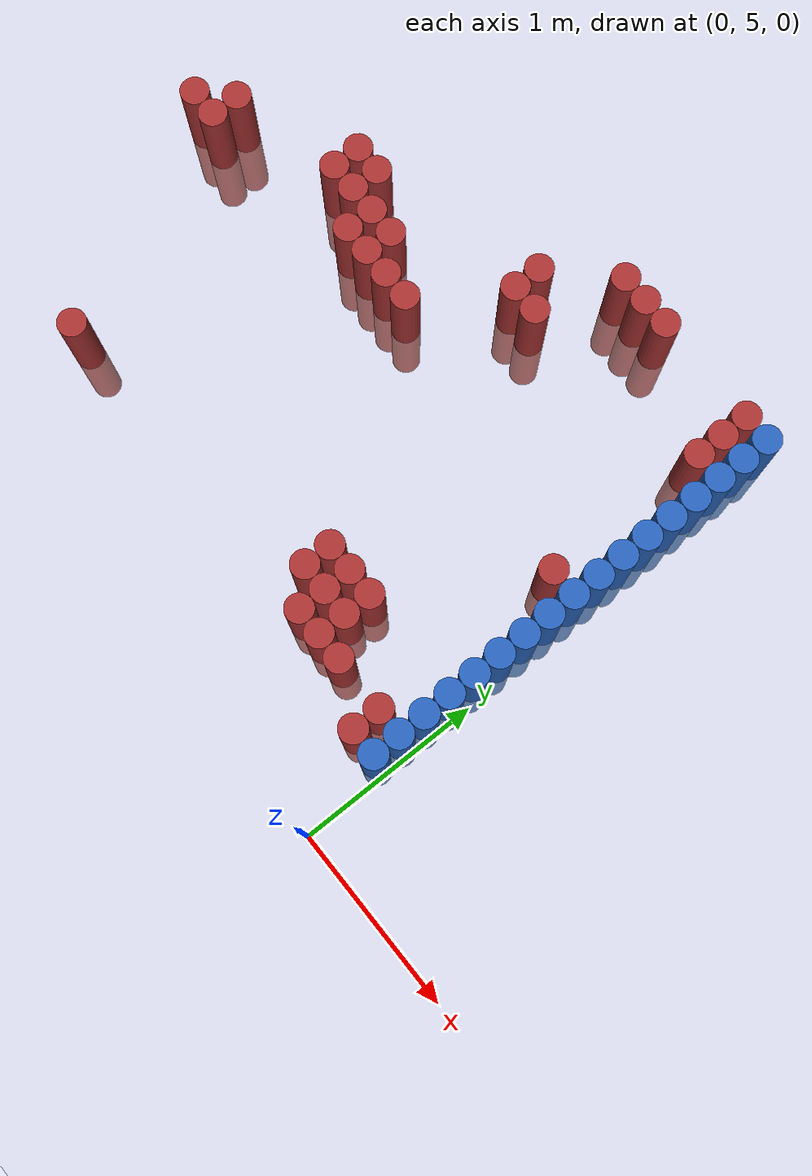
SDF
<sdf version="1.6">
 <world name="default">
  <model name="ground_plane">
   <static>1</static>
   <link name="link">
    <collision name="collision">
     <geometry><plane><normal>0 0 1</normal><size>100 100</size></plane></geometry>
     <surface><friction><ode><mu>100</mu><mu2>50</mu2></ode></friction></surface>
    </collision>
    <visual name="visual">
     <cast_shadows>0</cast_shadows>
     <geometry><plane><normal>0 0 1</normal><size>100 100</size></plane></geometry>
     <material>
      <script><uri>file://media/materials/scripts/gazebo.material</uri><name>Gazebo/Grey</name></script>
     </material>
    </visual>
   </link>
  </model>
  <model name="unit_cylinder_154">
   <static>1</static>
   <pose>-3.225000 6.825000 0.000000 0.000000 0.000000 0.000000</pose>
   <link name="link">
    <inertial>
     <mass>1</mass>
     <inertia><ixx>0.145833</ixx><ixy>0</ixy><ixz>0</ixz><iyy>0.145833</iyy><iyz>0</iyz><izz>0.125</izz></inertia>
    </inertial>
    <collision name="collision">
     <geometry><cylinder><radius>0.075000</radius><length>1</length></cylinder></geometry>
    </collision>
    <visual name="visual">
     <geometry><cylinder><radius>0.075000</radius><length>1</length></cylinder></geometry>
     <material>
      <ambient>0.648000 0.192000 0.192000 1</ambient>
      <diffuse>0.648000 0.192000 0.192000 1</diffuse>
     </material>
     <material>
      <script><name>Gazebo/Grey</name><uri>file://media/materials/scripts/gazebo.material</uri></script>
     </material>
    </visual>
   </link>
  </model>
  <model name="unit_cylinder_155">
   <static>1</static>
   <pose>-3.075000 6.825000 0.000000 0.000000 0.000000 0.000000</pose>
   <link name="link">
    <inertial>
     <mass>1</mass>
     <inertia><ixx>0.145833</ixx><ixy>0</ixy><ixz>0</ixz><iyy>0.145833</iyy><iyz>0</iyz><izz>0.125</izz></inertia>
    </inertial>
    <collision name="collision">
     <geometry><cylinder><radius>0.075000</radius><length>1</length></cylinder></geometry>
    </collision>
    <visual name="visual">
     <geometry><cylinder><radius>0.075000</radius><length>1</length></cylinder></geometry>
     <material>
      <ambient>0.648000 0.192000 0.192000 1</ambient>
      <diffuse>0.648000 0.192000 0.192000 1</diffuse>
     </material>
     <material>
      <script><name>Gazebo/Grey</name><uri>file://media/materials/scripts/gazebo.material</uri></script>
     </material>
    </visual>
   </link>
  </model>
  <model name="unit_cylinder_156">
   <static>1</static>
   <pose>-3.075000 6.975000 0.000000 0.000000 0.000000 0.000000</pose>
   <link name="link">
    <inertial>
     <mass>1</mass>
     <inertia><ixx>0.145833</ixx><ixy>0</ixy><ixz>0</ixz><iyy>0.145833</iyy><iyz>0</iyz><izz>0.125</izz></inertia>
    </inertial>
    <collision name="collision">
     <geometry><cylinder><radius>0.075000</radius><length>1</length></cylinder></geometry>
    </collision>
    <visual name="visual">
     <geometry><cylinder><radius>0.075000</radius><length>1</length></cylinder></geometry>
     <material>
      <ambient>0.648000 0.192000 0.192000 1</ambient>
      <diffuse>0.648000 0.192000 0.192000 1</diffuse>
     </material>
     <material>
      <script><name>Gazebo/Grey</name><uri>file://media/materials/scripts/gazebo.material</uri></script>
     </material>
    </visual>
   </link>
  </model>
  <model name="unit_cylinder_158">
   <static>1</static>
   <pose>-2.625000 5.625000 0.000000 0.000000 0.000000 0.000000</pose>
   <link name="link">
    <inertial>
     <mass>1</mass>
     <inertia><ixx>0.145833</ixx><ixy>0</ixy><ixz>0</ixz><iyy>0.145833</iyy><iyz>0</iyz><izz>0.125</izz></inertia>
    </inertial>
    <collision name="collision">
     <geometry><cylinder><radius>0.075000</radius><length>1</length></cylinder></geometry>
    </collision>
    <visual name="visual">
     <geometry><cylinder><radius>0.075000</radius><length>1</length></cylinder></geometry>
     <material>
      <ambient>0.648000 0.192000 0.192000 1</ambient>
      <diffuse>0.648000 0.192000 0.192000 1</diffuse>
     </material>
     <material>
      <script><name>Gazebo/Grey</name><uri>file://media/materials/scripts/gazebo.material</uri></script>
     </material>
    </visual>
   </link>
  </model>
  <model name="unit_cylinder_163">
   <static>1</static>
   <pose>-2.475000 7.125000 0.000000 0.000000 0.000000 0.000000</pose>
   <link name="link">
    <inertial>
     <mass>1</mass>
     <inertia><ixx>0.145833</ixx><ixy>0</ixy><ixz>0</ixz><iyy>0.145833</iyy><iyz>0</iyz><izz>0.125</izz></inertia>
    </inertial>
    <collision name="collision">
     <geometry><cylinder><radius>0.075000</radius><length>1</length></cylinder></geometry>
    </collision>
    <visual name="visual">
     <geometry><cylinder><radius>0.075000</radius><length>1</length></cylinder></geometry>
     <material>
      <ambient>0.648000 0.192000 0.192000 1</ambient>
      <diffuse>0.648000 0.192000 0.192000 1</diffuse>
     </material>
     <material>
      <script><name>Gazebo/Grey</name><uri>file://media/materials/scripts/gazebo.material</uri></script>
     </material>
    </visual>
   </link>
  </model>
  <model name="unit_cylinder_164">
   <static>1</static>
   <pose>-2.475000 7.275000 0.000000 0.000000 0.000000 0.000000</pose>
   <link name="link">
    <inertial>
     <mass>1</mass>
     <inertia><ixx>0.145833</ixx><ixy>0</ixy><ixz>0</ixz><iyy>0.145833</iyy><iyz>0</iyz><izz>0.125</izz></inertia>
    </inertial>
    <collision name="collision">
     <geometry><cylinder><radius>0.075000</radius><length>1</length></cylinder></geometry>
    </collision>
    <visual name="visual">
     <geometry><cylinder><radius>0.075000</radius><length>1</length></cylinder></geometry>
     <material>
      <ambient>0.648000 0.192000 0.192000 1</ambient>
      <diffuse>0.648000 0.192000 0.192000 1</diffuse>
     </material>
     <material>
      <script><name>Gazebo/Grey</name><uri>file://media/materials/scripts/gazebo.material</uri></script>
     </material>
    </visual>
   </link>
  </model>
  <model name="unit_cylinder_169">
   <static>1</static>
   <pose>-2.325000 7.125000 0.000000 0.000000 0.000000 0.000000</pose>
   <link name="link">
    <inertial>
     <mass>1</mass>
     <inertia><ixx>0.145833</ixx><ixy>0</ixy><ixz>0</ixz><iyy>0.145833</iyy><iyz>0</iyz><izz>0.125</izz></inertia>
    </inertial>
    <collision name="collision">
     <geometry><cylinder><radius>0.075000</radius><length>1</length></cylinder></geometry>
    </collision>
    <visual name="visual">
     <geometry><cylinder><radius>0.075000</radius><length>1</length></cylinder></geometry>
     <material>
      <ambient>0.648000 0.192000 0.192000 1</ambient>
      <diffuse>0.648000 0.192000 0.192000 1</diffuse>
     </material>
     <material>
      <script><name>Gazebo/Grey</name><uri>file://media/materials/scripts/gazebo.material</uri></script>
     </material>
    </visual>
   </link>
  </model>
  <model name="unit_cylinder_170">
   <static>1</static>
   <pose>-2.325000 7.275000 0.000000 0.000000 0.000000 0.000000</pose>
   <link name="link">
    <inertial>
     <mass>1</mass>
     <inertia><ixx>0.145833</ixx><ixy>0</ixy><ixz>0</ixz><iyy>0.145833</iyy><iyz>0</iyz><izz>0.125</izz></inertia>
    </inertial>
    <collision name="collision">
     <geometry><cylinder><radius>0.075000</radius><length>1</length></cylinder></geometry>
    </collision>
    <visual name="visual">
     <geometry><cylinder><radius>0.075000</radius><length>1</length></cylinder></geometry>
     <material>
      <ambient>0.648000 0.192000 0.192000 1</ambient>
      <diffuse>0.648000 0.192000 0.192000 1</diffuse>
     </material>
     <material>
      <script><name>Gazebo/Grey</name><uri>file://media/materials/scripts/gazebo.material</uri></script>
     </material>
    </visual>
   </link>
  </model>
  <model name="unit_cylinder_173">
   <static>1</static>
   <pose>-2.175000 6.975000 0.000000 0.000000 0.000000 0.000000</pose>
   <link name="link">
    <inertial>
     <mass>1</mass>
     <inertia><ixx>0.145833</ixx><ixy>0</ixy><ixz>0</ixz><iyy>0.145833</iyy><iyz>0</iyz><izz>0.125</izz></inertia>
    </inertial>
    <collision name="collision">
     <geometry><cylinder><radius>0.075000</radius><length>1</length></cylinder></geometry>
    </collision>
    <visual name="visual">
     <geometry><cylinder><radius>0.075000</radius><length>1</length></cylinder></geometry>
     <material>
      <ambient>0.648000 0.192000 0.192000 1</ambient>
      <diffuse>0.648000 0.192000 0.192000 1</diffuse>
     </material>
     <material>
      <script><name>Gazebo/Grey</name><uri>file://media/materials/scripts/gazebo.material</uri></script>
     </material>
    </visual>
   </link>
  </model>
  <model name="unit_cylinder_174">
   <static>1</static>
   <pose>-2.175000 7.125000 0.000000 0.000000 0.000000 0.000000</pose>
   <link name="link">
    <inertial>
     <mass>1</mass>
     <inertia><ixx>0.145833</ixx><ixy>0</ixy><ixz>0</ixz><iyy>0.145833</iyy><iyz>0</iyz><izz>0.125</izz></inertia>
    </inertial>
    <collision name="collision">
     <geometry><cylinder><radius>0.075000</radius><length>1</length></cylinder></geometry>
    </collision>
    <visual name="visual">
     <geometry><cylinder><radius>0.075000</radius><length>1</length></cylinder></geometry>
     <material>
      <ambient>0.648000 0.192000 0.192000 1</ambient>
      <diffuse>0.648000 0.192000 0.192000 1</diffuse>
     </material>
     <material>
      <script><name>Gazebo/Grey</name><uri>file://media/materials/scripts/gazebo.material</uri></script>
     </material>
    </visual>
   </link>
  </model>
  <model name="unit_cylinder_179">
   <static>1</static>
   <pose>-2.025000 6.975000 0.000000 0.000000 0.000000 0.000000</pose>
   <link name="link">
    <inertial>
     <mass>1</mass>
     <inertia><ixx>0.145833</ixx><ixy>0</ixy><ixz>0</ixz><iyy>0.145833</iyy><iyz>0</iyz><izz>0.125</izz></inertia>
    </inertial>
    <collision name="collision">
     <geometry><cylinder><radius>0.075000</radius><length>1</length></cylinder></geometry>
    </collision>
    <visual name="visual">
     <geometry><cylinder><radius>0.075000</radius><length>1</length></cylinder></geometry>
     <material>
      <ambient>0.648000 0.192000 0.192000 1</ambient>
      <diffuse>0.648000 0.192000 0.192000 1</diffuse>
     </material>
     <material>
      <script><name>Gazebo/Grey</name><uri>file://media/materials/scripts/gazebo.material</uri></script>
     </material>
    </visual>
   </link>
  </model>
  <model name="unit_cylinder_180">
   <static>1</static>
   <pose>-2.025000 7.125000 0.000000 0.000000 0.000000 0.000000</pose>
   <link name="link">
    <inertial>
     <mass>1</mass>
     <inertia><ixx>0.145833</ixx><ixy>0</ixy><ixz>0</ixz><iyy>0.145833</iyy><iyz>0</iyz><izz>0.125</izz></inertia>
    </inertial>
    <collision name="collision">
     <geometry><cylinder><radius>0.075000</radius><length>1</length></cylinder></geometry>
    </collision>
    <visual name="visual">
     <geometry><cylinder><radius>0.075000</radius><length>1</length></cylinder></geometry>
     <material>
      <ambient>0.648000 0.192000 0.192000 1</ambient>
      <diffuse>0.648000 0.192000 0.192000 1</diffuse>
     </material>
     <material>
      <script><name>Gazebo/Grey</name><uri>file://media/materials/scripts/gazebo.material</uri></script>
     </material>
    </visual>
   </link>
  </model>
  <model name="unit_cylinder_184">
   <static>1</static>
   <pose>-1.875000 6.975000 0.000000 0.000000 0.000000 0.000000</pose>
   <link name="link">
    <inertial>
     <mass>1</mass>
     <inertia><ixx>0.145833</ixx><ixy>0</ixy><ixz>0</ixz><iyy>0.145833</iyy><iyz>0</iyz><izz>0.125</izz></inertia>
    </inertial>
    <collision name="collision">
     <geometry><cylinder><radius>0.075000</radius><length>1</length></cylinder></geometry>
    </collision>
    <visual name="visual">
     <geometry><cylinder><radius>0.075000</radius><length>1</length></cylinder></geometry>
     <material>
      <ambient>0.648000 0.192000 0.192000 1</ambient>
      <diffuse>0.648000 0.192000 0.192000 1</diffuse>
     </material>
     <material>
      <script><name>Gazebo/Grey</name><uri>file://media/materials/scripts/gazebo.material</uri></script>
     </material>
    </visual>
   </link>
  </model>
  <model name="unit_cylinder_187">
   <static>1</static>
   <pose>-1.725000 6.975000 0.000000 0.000000 0.000000 0.000000</pose>
   <link name="link">
    <inertial>
     <mass>1</mass>
     <inertia><ixx>0.145833</ixx><ixy>0</ixy><ixz>0</ixz><iyy>0.145833</iyy><iyz>0</iyz><izz>0.125</izz></inertia>
    </inertial>
    <collision name="collision">
     <geometry><cylinder><radius>0.075000</radius><length>1</length></cylinder></geometry>
    </collision>
    <visual name="visual">
     <geometry><cylinder><radius>0.075000</radius><length>1</length></cylinder></geometry>
     <material>
      <ambient>0.648000 0.192000 0.192000 1</ambient>
      <diffuse>0.648000 0.192000 0.192000 1</diffuse>
     </material>
     <material>
      <script><name>Gazebo/Grey</name><uri>file://media/materials/scripts/gazebo.material</uri></script>
     </material>
    </visual>
   </link>
  </model>
  <model name="unit_cylinder_190">
   <static>1</static>
   <pose>-1.425000 7.425000 0.000000 0.000000 0.000000 0.000000</pose>
   <link name="link">
    <inertial>
     <mass>1</mass>
     <inertia><ixx>0.145833</ixx><ixy>0</ixy><ixz>0</ixz><iyy>0.145833</iyy><iyz>0</iyz><izz>0.125</izz></inertia>
    </inertial>
    <collision name="collision">
     <geometry><cylinder><radius>0.075000</radius><length>1</length></cylinder></geometry>
    </collision>
    <visual name="visual">
     <geometry><cylinder><radius>0.075000</radius><length>1</length></cylinder></geometry>
     <material>
      <ambient>0.648000 0.192000 0.192000 1</ambient>
      <diffuse>0.648000 0.192000 0.192000 1</diffuse>
     </material>
     <material>
      <script><name>Gazebo/Grey</name><uri>file://media/materials/scripts/gazebo.material</uri></script>
     </material>
    </visual>
   </link>
  </model>
  <model name="unit_cylinder_191">
   <static>1</static>
   <pose>-1.425000 7.575000 0.000000 0.000000 0.000000 0.000000</pose>
   <link name="link">
    <inertial>
     <mass>1</mass>
     <inertia><ixx>0.145833</ixx><ixy>0</ixy><ixz>0</ixz><iyy>0.145833</iyy><iyz>0</iyz><izz>0.125</izz></inertia>
    </inertial>
    <collision name="collision">
     <geometry><cylinder><radius>0.075000</radius><length>1</length></cylinder></geometry>
    </collision>
    <visual name="visual">
     <geometry><cylinder><radius>0.075000</radius><length>1</length></cylinder></geometry>
     <material>
      <ambient>0.648000 0.192000 0.192000 1</ambient>
      <diffuse>0.648000 0.192000 0.192000 1</diffuse>
     </material>
     <material>
      <script><name>Gazebo/Grey</name><uri>file://media/materials/scripts/gazebo.material</uri></script>
     </material>
    </visual>
   </link>
  </model>
  <model name="unit_cylinder_195">
   <static>1</static>
   <pose>-1.275000 7.425000 0.000000 0.000000 0.000000 0.000000</pose>
   <link name="link">
    <inertial>
     <mass>1</mass>
     <inertia><ixx>0.145833</ixx><ixy>0</ixy><ixz>0</ixz><iyy>0.145833</iyy><iyz>0</iyz><izz>0.125</izz></inertia>
    </inertial>
    <collision name="collision">
     <geometry><cylinder><radius>0.075000</radius><length>1</length></cylinder></geometry>
    </collision>
    <visual name="visual">
     <geometry><cylinder><radius>0.075000</radius><length>1</length></cylinder></geometry>
     <material>
      <ambient>0.648000 0.192000 0.192000 1</ambient>
      <diffuse>0.648000 0.192000 0.192000 1</diffuse>
     </material>
     <material>
      <script><name>Gazebo/Grey</name><uri>file://media/materials/scripts/gazebo.material</uri></script>
     </material>
    </visual>
   </link>
  </model>
  <model name="unit_cylinder_196">
   <static>1</static>
   <pose>-1.125000 7.875000 0.000000 0.000000 0.000000 0.000000</pose>
   <link name="link">
    <inertial>
     <mass>1</mass>
     <inertia><ixx>0.145833</ixx><ixy>0</ixy><ixz>0</ixz><iyy>0.145833</iyy><iyz>0</iyz><izz>0.125</izz></inertia>
    </inertial>
    <collision name="collision">
     <geometry><cylinder><radius>0.075000</radius><length>1</length></cylinder></geometry>
    </collision>
    <visual name="visual">
     <geometry><cylinder><radius>0.075000</radius><length>1</length></cylinder></geometry>
     <material>
      <ambient>0.648000 0.192000 0.192000 1</ambient>
      <diffuse>0.648000 0.192000 0.192000 1</diffuse>
     </material>
     <material>
      <script><name>Gazebo/Grey</name><uri>file://media/materials/scripts/gazebo.material</uri></script>
     </material>
    </visual>
   </link>
  </model>
  <model name="unit_cylinder_198">
   <static>1</static>
   <pose>-0.975000 5.775000 0.000000 0.000000 0.000000 0.000000</pose>
   <link name="link">
    <inertial>
     <mass>1</mass>
     <inertia><ixx>0.145833</ixx><ixy>0</ixy><ixz>0</ixz><iyy>0.145833</iyy><iyz>0</iyz><izz>0.125</izz></inertia>
    </inertial>
    <collision name="collision">
     <geometry><cylinder><radius>0.075000</radius><length>1</length></cylinder></geometry>
    </collision>
    <visual name="visual">
     <geometry><cylinder><radius>0.075000</radius><length>1</length></cylinder></geometry>
     <material>
      <ambient>0.648000 0.192000 0.192000 1</ambient>
      <diffuse>0.648000 0.192000 0.192000 1</diffuse>
     </material>
     <material>
      <script><name>Gazebo/Grey</name><uri>file://media/materials/scripts/gazebo.material</uri></script>
     </material>
    </visual>
   </link>
  </model>
  <model name="unit_cylinder_199">
   <static>1</static>
   <pose>-0.975000 5.925000 0.000000 0.000000 0.000000 0.000000</pose>
   <link name="link">
    <inertial>
     <mass>1</mass>
     <inertia><ixx>0.145833</ixx><ixy>0</ixy><ixz>0</ixz><iyy>0.145833</iyy><iyz>0</iyz><izz>0.125</izz></inertia>
    </inertial>
    <collision name="collision">
     <geometry><cylinder><radius>0.075000</radius><length>1</length></cylinder></geometry>
    </collision>
    <visual name="visual">
     <geometry><cylinder><radius>0.075000</radius><length>1</length></cylinder></geometry>
     <material>
      <ambient>0.648000 0.192000 0.192000 1</ambient>
      <diffuse>0.648000 0.192000 0.192000 1</diffuse>
     </material>
     <material>
      <script><name>Gazebo/Grey</name><uri>file://media/materials/scripts/gazebo.material</uri></script>
     </material>
    </visual>
   </link>
  </model>
  <model name="unit_cylinder_200">
   <static>1</static>
   <pose>-0.975000 7.875000 0.000000 0.000000 0.000000 0.000000</pose>
   <link name="link">
    <inertial>
     <mass>1</mass>
     <inertia><ixx>0.145833</ixx><ixy>0</ixy><ixz>0</ixz><iyy>0.145833</iyy><iyz>0</iyz><izz>0.125</izz></inertia>
    </inertial>
    <collision name="collision">
     <geometry><cylinder><radius>0.075000</radius><length>1</length></cylinder></geometry>
    </collision>
    <visual name="visual">
     <geometry><cylinder><radius>0.075000</radius><length>1</length></cylinder></geometry>
     <material>
      <ambient>0.648000 0.192000 0.192000 1</ambient>
      <diffuse>0.648000 0.192000 0.192000 1</diffuse>
     </material>
     <material>
      <script><name>Gazebo/Grey</name><uri>file://media/materials/scripts/gazebo.material</uri></script>
     </material>
    </visual>
   </link>
  </model>
  <model name="unit_cylinder_202">
   <static>1</static>
   <pose>-0.825000 5.625000 0.000000 0.000000 0.000000 0.000000</pose>
   <link name="link">
    <inertial>
     <mass>1</mass>
     <inertia><ixx>0.145833</ixx><ixy>0</ixy><ixz>0</ixz><iyy>0.145833</iyy><iyz>0</iyz><izz>0.125</izz></inertia>
    </inertial>
    <collision name="collision">
     <geometry><cylinder><radius>0.075000</radius><length>1</length></cylinder></geometry>
    </collision>
    <visual name="visual">
     <geometry><cylinder><radius>0.075000</radius><length>1</length></cylinder></geometry>
     <material>
      <ambient>0.648000 0.192000 0.192000 1</ambient>
      <diffuse>0.648000 0.192000 0.192000 1</diffuse>
     </material>
     <material>
      <script><name>Gazebo/Grey</name><uri>file://media/materials/scripts/gazebo.material</uri></script>
     </material>
    </visual>
   </link>
  </model>
  <model name="unit_cylinder_203">
   <static>1</static>
   <pose>-0.825000 5.775000 0.000000 0.000000 0.000000 0.000000</pose>
   <link name="link">
    <inertial>
     <mass>1</mass>
     <inertia><ixx>0.145833</ixx><ixy>0</ixy><ixz>0</ixz><iyy>0.145833</iyy><iyz>0</iyz><izz>0.125</izz></inertia>
    </inertial>
    <collision name="collision">
     <geometry><cylinder><radius>0.075000</radius><length>1</length></cylinder></geometry>
    </collision>
    <visual name="visual">
     <geometry><cylinder><radius>0.075000</radius><length>1</length></cylinder></geometry>
     <material>
      <ambient>0.648000 0.192000 0.192000 1</ambient>
      <diffuse>0.648000 0.192000 0.192000 1</diffuse>
     </material>
     <material>
      <script><name>Gazebo/Grey</name><uri>file://media/materials/scripts/gazebo.material</uri></script>
     </material>
    </visual>
   </link>
  </model>
  <model name="unit_cylinder_204">
   <static>1</static>
   <pose>-0.825000 5.925000 0.000000 0.000000 0.000000 0.000000</pose>
   <link name="link">
    <inertial>
     <mass>1</mass>
     <inertia><ixx>0.145833</ixx><ixy>0</ixy><ixz>0</ixz><iyy>0.145833</iyy><iyz>0</iyz><izz>0.125</izz></inertia>
    </inertial>
    <collision name="collision">
     <geometry><cylinder><radius>0.075000</radius><length>1</length></cylinder></geometry>
    </collision>
    <visual name="visual">
     <geometry><cylinder><radius>0.075000</radius><length>1</length></cylinder></geometry>
     <material>
      <ambient>0.648000 0.192000 0.192000 1</ambient>
      <diffuse>0.648000 0.192000 0.192000 1</diffuse>
     </material>
     <material>
      <script><name>Gazebo/Grey</name><uri>file://media/materials/scripts/gazebo.material</uri></script>
     </material>
    </visual>
   </link>
  </model>
  <model name="unit_cylinder_205">
   <static>1</static>
   <pose>-0.825000 7.875000 0.000000 0.000000 0.000000 0.000000</pose>
   <link name="link">
    <inertial>
     <mass>1</mass>
     <inertia><ixx>0.145833</ixx><ixy>0</ixy><ixz>0</ixz><iyy>0.145833</iyy><iyz>0</iyz><izz>0.125</izz></inertia>
    </inertial>
    <collision name="collision">
     <geometry><cylinder><radius>0.075000</radius><length>1</length></cylinder></geometry>
    </collision>
    <visual name="visual">
     <geometry><cylinder><radius>0.075000</radius><length>1</length></cylinder></geometry>
     <material>
      <ambient>0.648000 0.192000 0.192000 1</ambient>
      <diffuse>0.648000 0.192000 0.192000 1</diffuse>
     </material>
     <material>
      <script><name>Gazebo/Grey</name><uri>file://media/materials/scripts/gazebo.material</uri></script>
     </material>
    </visual>
   </link>
  </model>
  <model name="unit_cylinder_208">
   <static>1</static>
   <pose>-0.675000 5.625000 0.000000 0.000000 0.000000 0.000000</pose>
   <link name="link">
    <inertial>
     <mass>1</mass>
     <inertia><ixx>0.145833</ixx><ixy>0</ixy><ixz>0</ixz><iyy>0.145833</iyy><iyz>0</iyz><izz>0.125</izz></inertia>
    </inertial>
    <collision name="collision">
     <geometry><cylinder><radius>0.075000</radius><length>1</length></cylinder></geometry>
    </collision>
    <visual name="visual">
     <geometry><cylinder><radius>0.075000</radius><length>1</length></cylinder></geometry>
     <material>
      <ambient>0.648000 0.192000 0.192000 1</ambient>
      <diffuse>0.648000 0.192000 0.192000 1</diffuse>
     </material>
     <material>
      <script><name>Gazebo/Grey</name><uri>file://media/materials/scripts/gazebo.material</uri></script>
     </material>
    </visual>
   </link>
  </model>
  <model name="unit_cylinder_209">
   <static>1</static>
   <pose>-0.675000 5.775000 0.000000 0.000000 0.000000 0.000000</pose>
   <link name="link">
    <inertial>
     <mass>1</mass>
     <inertia><ixx>0.145833</ixx><ixy>0</ixy><ixz>0</ixz><iyy>0.145833</iyy><iyz>0</iyz><izz>0.125</izz></inertia>
    </inertial>
    <collision name="collision">
     <geometry><cylinder><radius>0.075000</radius><length>1</length></cylinder></geometry>
    </collision>
    <visual name="visual">
     <geometry><cylinder><radius>0.075000</radius><length>1</length></cylinder></geometry>
     <material>
      <ambient>0.648000 0.192000 0.192000 1</ambient>
      <diffuse>0.648000 0.192000 0.192000 1</diffuse>
     </material>
     <material>
      <script><name>Gazebo/Grey</name><uri>file://media/materials/scripts/gazebo.material</uri></script>
     </material>
    </visual>
   </link>
  </model>
  <model name="unit_cylinder_210">
   <static>1</static>
   <pose>-0.675000 5.925000 0.000000 0.000000 0.000000 0.000000</pose>
   <link name="link">
    <inertial>
     <mass>1</mass>
     <inertia><ixx>0.145833</ixx><ixy>0</ixy><ixz>0</ixz><iyy>0.145833</iyy><iyz>0</iyz><izz>0.125</izz></inertia>
    </inertial>
    <collision name="collision">
     <geometry><cylinder><radius>0.075000</radius><length>1</length></cylinder></geometry>
    </collision>
    <visual name="visual">
     <geometry><cylinder><radius>0.075000</radius><length>1</length></cylinder></geometry>
     <material>
      <ambient>0.648000 0.192000 0.192000 1</ambient>
      <diffuse>0.648000 0.192000 0.192000 1</diffuse>
     </material>
     <material>
      <script><name>Gazebo/Grey</name><uri>file://media/materials/scripts/gazebo.material</uri></script>
     </material>
    </visual>
   </link>
  </model>
  <model name="unit_cylinder_214">
   <static>1</static>
   <pose>-0.525000 5.625000 0.000000 0.000000 0.000000 0.000000</pose>
   <link name="link">
    <inertial>
     <mass>1</mass>
     <inertia><ixx>0.145833</ixx><ixy>0</ixy><ixz>0</ixz><iyy>0.145833</iyy><iyz>0</iyz><izz>0.125</izz></inertia>
    </inertial>
    <collision name="collision">
     <geometry><cylinder><radius>0.075000</radius><length>1</length></cylinder></geometry>
    </collision>
    <visual name="visual">
     <geometry><cylinder><radius>0.075000</radius><length>1</length></cylinder></geometry>
     <material>
      <ambient>0.648000 0.192000 0.192000 1</ambient>
      <diffuse>0.648000 0.192000 0.192000 1</diffuse>
     </material>
     <material>
      <script><name>Gazebo/Grey</name><uri>file://media/materials/scripts/gazebo.material</uri></script>
     </material>
    </visual>
   </link>
  </model>
  <model name="unit_cylinder_219">
   <static>1</static>
   <pose>-0.225000 5.475000 0.000000 0.000000 0.000000 0.000000</pose>
   <link name="link">
    <inertial>
     <mass>1</mass>
     <inertia><ixx>0.145833</ixx><ixy>0</ixy><ixz>0</ixz><iyy>0.145833</iyy><iyz>0</iyz><izz>0.125</izz></inertia>
    </inertial>
    <collision name="collision">
     <geometry><cylinder><radius>0.075000</radius><length>1</length></cylinder></geometry>
    </collision>
    <visual name="visual">
     <geometry><cylinder><radius>0.075000</radius><length>1</length></cylinder></geometry>
     <material>
      <ambient>0.648000 0.192000 0.192000 1</ambient>
      <diffuse>0.648000 0.192000 0.192000 1</diffuse>
     </material>
     <material>
      <script><name>Gazebo/Grey</name><uri>file://media/materials/scripts/gazebo.material</uri></script>
     </material>
    </visual>
   </link>
  </model>
  <model name="unit_cylinder_220">
   <static>1</static>
   <pose>-0.225000 5.625000 0.000000 0.000000 0.000000 0.000000</pose>
   <link name="link">
    <inertial>
     <mass>1</mass>
     <inertia><ixx>0.145833</ixx><ixy>0</ixy><ixz>0</ixz><iyy>0.145833</iyy><iyz>0</iyz><izz>0.125</izz></inertia>
    </inertial>
    <collision name="collision">
     <geometry><cylinder><radius>0.075000</radius><length>1</length></cylinder></geometry>
    </collision>
    <visual name="visual">
     <geometry><cylinder><radius>0.075000</radius><length>1</length></cylinder></geometry>
     <material>
      <ambient>0.648000 0.192000 0.192000 1</ambient>
      <diffuse>0.648000 0.192000 0.192000 1</diffuse>
     </material>
     <material>
      <script><name>Gazebo/Grey</name><uri>file://media/materials/scripts/gazebo.material</uri></script>
     </material>
    </visual>
   </link>
  </model>
  <model name="unit_cylinder_221">
   <static>1</static>
   <pose>-0.225000 6.675000 0.000000 0.000000 0.000000 0.000000</pose>
   <link name="link">
    <inertial>
     <mass>1</mass>
     <inertia><ixx>0.145833</ixx><ixy>0</ixy><ixz>0</ixz><iyy>0.145833</iyy><iyz>0</iyz><izz>0.125</izz></inertia>
    </inertial>
    <collision name="collision">
     <geometry><cylinder><radius>0.075000</radius><length>1</length></cylinder></geometry>
    </collision>
    <visual name="visual">
     <geometry><cylinder><radius>0.075000</radius><length>1</length></cylinder></geometry>
     <material>
      <ambient>0.648000 0.192000 0.192000 1</ambient>
      <diffuse>0.648000 0.192000 0.192000 1</diffuse>
     </material>
     <material>
      <script><name>Gazebo/Grey</name><uri>file://media/materials/scripts/gazebo.material</uri></script>
     </material>
    </visual>
   </link>
  </model>
  <model name="unit_cylinder_222">
   <static>1</static>
   <pose>-0.225000 7.575000 0.000000 0.000000 0.000000 0.000000</pose>
   <link name="link">
    <inertial>
     <mass>1</mass>
     <inertia><ixx>0.145833</ixx><ixy>0</ixy><ixz>0</ixz><iyy>0.145833</iyy><iyz>0</iyz><izz>0.125</izz></inertia>
    </inertial>
    <collision name="collision">
     <geometry><cylinder><radius>0.075000</radius><length>1</length></cylinder></geometry>
    </collision>
    <visual name="visual">
     <geometry><cylinder><radius>0.075000</radius><length>1</length></cylinder></geometry>
     <material>
      <ambient>0.648000 0.192000 0.192000 1</ambient>
      <diffuse>0.648000 0.192000 0.192000 1</diffuse>
     </material>
     <material>
      <script><name>Gazebo/Grey</name><uri>file://media/materials/scripts/gazebo.material</uri></script>
     </material>
    </visual>
   </link>
  </model>
  <model name="unit_cylinder_223">
   <static>1</static>
   <pose>-0.225000 7.725000 0.000000 0.000000 0.000000 0.000000</pose>
   <link name="link">
    <inertial>
     <mass>1</mass>
     <inertia><ixx>0.145833</ixx><ixy>0</ixy><ixz>0</ixz><iyy>0.145833</iyy><iyz>0</iyz><izz>0.125</izz></inertia>
    </inertial>
    <collision name="collision">
     <geometry><cylinder><radius>0.075000</radius><length>1</length></cylinder></geometry>
    </collision>
    <visual name="visual">
     <geometry><cylinder><radius>0.075000</radius><length>1</length></cylinder></geometry>
     <material>
      <ambient>0.648000 0.192000 0.192000 1</ambient>
      <diffuse>0.648000 0.192000 0.192000 1</diffuse>
     </material>
     <material>
      <script><name>Gazebo/Grey</name><uri>file://media/materials/scripts/gazebo.material</uri></script>
     </material>
    </visual>
   </link>
  </model>
  <model name="unit_cylinder_224">
   <static>1</static>
   <pose>-0.225000 7.875000 0.000000 0.000000 0.000000 0.000000</pose>
   <link name="link">
    <inertial>
     <mass>1</mass>
     <inertia><ixx>0.145833</ixx><ixy>0</ixy><ixz>0</ixz><iyy>0.145833</iyy><iyz>0</iyz><izz>0.125</izz></inertia>
    </inertial>
    <collision name="collision">
     <geometry><cylinder><radius>0.075000</radius><length>1</length></cylinder></geometry>
    </collision>
    <visual name="visual">
     <geometry><cylinder><radius>0.075000</radius><length>1</length></cylinder></geometry>
     <material>
      <ambient>0.648000 0.192000 0.192000 1</ambient>
      <diffuse>0.648000 0.192000 0.192000 1</diffuse>
     </material>
     <material>
      <script><name>Gazebo/Grey</name><uri>file://media/materials/scripts/gazebo.material</uri></script>
     </material>
    </visual>
   </link>
  </model>
  <model name="unit_cylinder_234">
   <static>1</static>
   <pose>-0.075000 5.475000 0.000000 0.000000 0.000000 0.000000</pose>
   <link name="link">
    <inertial>
     <mass>1</mass>
     <inertia><ixx>0.145833</ixx><ixy>0</ixy><ixz>0</ixz><iyy>0.145833</iyy><iyz>0</iyz><izz>0.125</izz></inertia>
    </inertial>
    <collision name="collision">
     <geometry><cylinder><radius>0.075000</radius><length>1</length></cylinder></geometry>
    </collision>
    <visual name="visual">
     <geometry><cylinder><radius>0.075000</radius><length>1</length></cylinder></geometry>
     <material>
      <ambient>0.152000 0.379000 0.720000 1</ambient>
      <diffuse>0.152000 0.379000 0.720000 1</diffuse>
     </material>
     <material>
      <script><name>Gazebo/Grey</name><uri>file://media/materials/scripts/gazebo.material</uri></script>
     </material>
    </visual>
   </link>
  </model>
  <model name="unit_cylinder_235">
   <static>1</static>
   <pose>-0.075000 5.625000 0.000000 0.000000 0.000000 0.000000</pose>
   <link name="link">
    <inertial>
     <mass>1</mass>
     <inertia><ixx>0.145833</ixx><ixy>0</ixy><ixz>0</ixz><iyy>0.145833</iyy><iyz>0</iyz><izz>0.125</izz></inertia>
    </inertial>
    <collision name="collision">
     <geometry><cylinder><radius>0.075000</radius><length>1</length></cylinder></geometry>
    </collision>
    <visual name="visual">
     <geometry><cylinder><radius>0.075000</radius><length>1</length></cylinder></geometry>
     <material>
      <ambient>0.152000 0.379000 0.720000 1</ambient>
      <diffuse>0.152000 0.379000 0.720000 1</diffuse>
     </material>
     <material>
      <script><name>Gazebo/Grey</name><uri>file://media/materials/scripts/gazebo.material</uri></script>
     </material>
    </visual>
   </link>
  </model>
  <model name="unit_cylinder_236">
   <static>1</static>
   <pose>-0.075000 5.775000 0.000000 0.000000 0.000000 0.000000</pose>
   <link name="link">
    <inertial>
     <mass>1</mass>
     <inertia><ixx>0.145833</ixx><ixy>0</ixy><ixz>0</ixz><iyy>0.145833</iyy><iyz>0</iyz><izz>0.125</izz></inertia>
    </inertial>
    <collision name="collision">
     <geometry><cylinder><radius>0.075000</radius><length>1</length></cylinder></geometry>
    </collision>
    <visual name="visual">
     <geometry><cylinder><radius>0.075000</radius><length>1</length></cylinder></geometry>
     <material>
      <ambient>0.152000 0.379000 0.720000 1</ambient>
      <diffuse>0.152000 0.379000 0.720000 1</diffuse>
     </material>
     <material>
      <script><name>Gazebo/Grey</name><uri>file://media/materials/scripts/gazebo.material</uri></script>
     </material>
    </visual>
   </link>
  </model>
  <model name="unit_cylinder_237">
   <static>1</static>
   <pose>-0.075000 5.925000 0.000000 0.000000 0.000000 0.000000</pose>
   <link name="link">
    <inertial>
     <mass>1</mass>
     <inertia><ixx>0.145833</ixx><ixy>0</ixy><ixz>0</ixz><iyy>0.145833</iyy><iyz>0</iyz><izz>0.125</izz></inertia>
    </inertial>
    <collision name="collision">
     <geometry><cylinder><radius>0.075000</radius><length>1</length></cylinder></geometry>
    </collision>
    <visual name="visual">
     <geometry><cylinder><radius>0.075000</radius><length>1</length></cylinder></geometry>
     <material>
      <ambient>0.152000 0.379000 0.720000 1</ambient>
      <diffuse>0.152000 0.379000 0.720000 1</diffuse>
     </material>
     <material>
      <script><name>Gazebo/Grey</name><uri>file://media/materials/scripts/gazebo.material</uri></script>
     </material>
    </visual>
   </link>
  </model>
  <model name="unit_cylinder_238">
   <static>1</static>
   <pose>-0.075000 6.075000 0.000000 0.000000 0.000000 0.000000</pose>
   <link name="link">
    <inertial>
     <mass>1</mass>
     <inertia><ixx>0.145833</ixx><ixy>0</ixy><ixz>0</ixz><iyy>0.145833</iyy><iyz>0</iyz><izz>0.125</izz></inertia>
    </inertial>
    <collision name="collision">
     <geometry><cylinder><radius>0.075000</radius><length>1</length></cylinder></geometry>
    </collision>
    <visual name="visual">
     <geometry><cylinder><radius>0.075000</radius><length>1</length></cylinder></geometry>
     <material>
      <ambient>0.152000 0.379000 0.720000 1</ambient>
      <diffuse>0.152000 0.379000 0.720000 1</diffuse>
     </material>
     <material>
      <script><name>Gazebo/Grey</name><uri>file://media/materials/scripts/gazebo.material</uri></script>
     </material>
    </visual>
   </link>
  </model>
  <model name="unit_cylinder_239">
   <static>1</static>
   <pose>-0.075000 6.225000 0.000000 0.000000 0.000000 0.000000</pose>
   <link name="link">
    <inertial>
     <mass>1</mass>
     <inertia><ixx>0.145833</ixx><ixy>0</ixy><ixz>0</ixz><iyy>0.145833</iyy><iyz>0</iyz><izz>0.125</izz></inertia>
    </inertial>
    <collision name="collision">
     <geometry><cylinder><radius>0.075000</radius><length>1</length></cylinder></geometry>
    </collision>
    <visual name="visual">
     <geometry><cylinder><radius>0.075000</radius><length>1</length></cylinder></geometry>
     <material>
      <ambient>0.152000 0.379000 0.720000 1</ambient>
      <diffuse>0.152000 0.379000 0.720000 1</diffuse>
     </material>
     <material>
      <script><name>Gazebo/Grey</name><uri>file://media/materials/scripts/gazebo.material</uri></script>
     </material>
    </visual>
   </link>
  </model>
  <model name="unit_cylinder_240">
   <static>1</static>
   <pose>-0.075000 6.375000 0.000000 0.000000 0.000000 0.000000</pose>
   <link name="link">
    <inertial>
     <mass>1</mass>
     <inertia><ixx>0.145833</ixx><ixy>0</ixy><ixz>0</ixz><iyy>0.145833</iyy><iyz>0</iyz><izz>0.125</izz></inertia>
    </inertial>
    <collision name="collision">
     <geometry><cylinder><radius>0.075000</radius><length>1</length></cylinder></geometry>
    </collision>
    <visual name="visual">
     <geometry><cylinder><radius>0.075000</radius><length>1</length></cylinder></geometry>
     <material>
      <ambient>0.152000 0.379000 0.720000 1</ambient>
      <diffuse>0.152000 0.379000 0.720000 1</diffuse>
     </material>
     <material>
      <script><name>Gazebo/Grey</name><uri>file://media/materials/scripts/gazebo.material</uri></script>
     </material>
    </visual>
   </link>
  </model>
  <model name="unit_cylinder_241">
   <static>1</static>
   <pose>-0.075000 6.525000 0.000000 0.000000 0.000000 0.000000</pose>
   <link name="link">
    <inertial>
     <mass>1</mass>
     <inertia><ixx>0.145833</ixx><ixy>0</ixy><ixz>0</ixz><iyy>0.145833</iyy><iyz>0</iyz><izz>0.125</izz></inertia>
    </inertial>
    <collision name="collision">
     <geometry><cylinder><radius>0.075000</radius><length>1</length></cylinder></geometry>
    </collision>
    <visual name="visual">
     <geometry><cylinder><radius>0.075000</radius><length>1</length></cylinder></geometry>
     <material>
      <ambient>0.152000 0.379000 0.720000 1</ambient>
      <diffuse>0.152000 0.379000 0.720000 1</diffuse>
     </material>
     <material>
      <script><name>Gazebo/Grey</name><uri>file://media/materials/scripts/gazebo.material</uri></script>
     </material>
    </visual>
   </link>
  </model>
  <model name="unit_cylinder_242">
   <static>1</static>
   <pose>-0.075000 6.675000 0.000000 0.000000 0.000000 0.000000</pose>
   <link name="link">
    <inertial>
     <mass>1</mass>
     <inertia><ixx>0.145833</ixx><ixy>0</ixy><ixz>0</ixz><iyy>0.145833</iyy><iyz>0</iyz><izz>0.125</izz></inertia>
    </inertial>
    <collision name="collision">
     <geometry><cylinder><radius>0.075000</radius><length>1</length></cylinder></geometry>
    </collision>
    <visual name="visual">
     <geometry><cylinder><radius>0.075000</radius><length>1</length></cylinder></geometry>
     <material>
      <ambient>0.152000 0.379000 0.720000 1</ambient>
      <diffuse>0.152000 0.379000 0.720000 1</diffuse>
     </material>
     <material>
      <script><name>Gazebo/Grey</name><uri>file://media/materials/scripts/gazebo.material</uri></script>
     </material>
    </visual>
   </link>
  </model>
  <model name="unit_cylinder_243">
   <static>1</static>
   <pose>-0.075000 6.825000 0.000000 0.000000 0.000000 0.000000</pose>
   <link name="link">
    <inertial>
     <mass>1</mass>
     <inertia><ixx>0.145833</ixx><ixy>0</ixy><ixz>0</ixz><iyy>0.145833</iyy><iyz>0</iyz><izz>0.125</izz></inertia>
    </inertial>
    <collision name="collision">
     <geometry><cylinder><radius>0.075000</radius><length>1</length></cylinder></geometry>
    </collision>
    <visual name="visual">
     <geometry><cylinder><radius>0.075000</radius><length>1</length></cylinder></geometry>
     <material>
      <ambient>0.152000 0.379000 0.720000 1</ambient>
      <diffuse>0.152000 0.379000 0.720000 1</diffuse>
     </material>
     <material>
      <script><name>Gazebo/Grey</name><uri>file://media/materials/scripts/gazebo.material</uri></script>
     </material>
    </visual>
   </link>
  </model>
  <model name="unit_cylinder_244">
   <static>1</static>
   <pose>-0.075000 6.975000 0.000000 0.000000 0.000000 0.000000</pose>
   <link name="link">
    <inertial>
     <mass>1</mass>
     <inertia><ixx>0.145833</ixx><ixy>0</ixy><ixz>0</ixz><iyy>0.145833</iyy><iyz>0</iyz><izz>0.125</izz></inertia>
    </inertial>
    <collision name="collision">
     <geometry><cylinder><radius>0.075000</radius><length>1</length></cylinder></geometry>
    </collision>
    <visual name="visual">
     <geometry><cylinder><radius>0.075000</radius><length>1</length></cylinder></geometry>
     <material>
      <ambient>0.152000 0.379000 0.720000 1</ambient>
      <diffuse>0.152000 0.379000 0.720000 1</diffuse>
     </material>
     <material>
      <script><name>Gazebo/Grey</name><uri>file://media/materials/scripts/gazebo.material</uri></script>
     </material>
    </visual>
   </link>
  </model>
  <model name="unit_cylinder_245">
   <static>1</static>
   <pose>-0.075000 7.125000 0.000000 0.000000 0.000000 0.000000</pose>
   <link name="link">
    <inertial>
     <mass>1</mass>
     <inertia><ixx>0.145833</ixx><ixy>0</ixy><ixz>0</ixz><iyy>0.145833</iyy><iyz>0</iyz><izz>0.125</izz></inertia>
    </inertial>
    <collision name="collision">
     <geometry><cylinder><radius>0.075000</radius><length>1</length></cylinder></geometry>
    </collision>
    <visual name="visual">
     <geometry><cylinder><radius>0.075000</radius><length>1</length></cylinder></geometry>
     <material>
      <ambient>0.152000 0.379000 0.720000 1</ambient>
      <diffuse>0.152000 0.379000 0.720000 1</diffuse>
     </material>
     <material>
      <script><name>Gazebo/Grey</name><uri>file://media/materials/scripts/gazebo.material</uri></script>
     </material>
    </visual>
   </link>
  </model>
  <model name="unit_cylinder_246">
   <static>1</static>
   <pose>-0.075000 7.275000 0.000000 0.000000 0.000000 0.000000</pose>
   <link name="link">
    <inertial>
     <mass>1</mass>
     <inertia><ixx>0.145833</ixx><ixy>0</ixy><ixz>0</ixz><iyy>0.145833</iyy><iyz>0</iyz><izz>0.125</izz></inertia>
    </inertial>
    <collision name="collision">
     <geometry><cylinder><radius>0.075000</radius><length>1</length></cylinder></geometry>
    </collision>
    <visual name="visual">
     <geometry><cylinder><radius>0.075000</radius><length>1</length></cylinder></geometry>
     <material>
      <ambient>0.152000 0.379000 0.720000 1</ambient>
      <diffuse>0.152000 0.379000 0.720000 1</diffuse>
     </material>
     <material>
      <script><name>Gazebo/Grey</name><uri>file://media/materials/scripts/gazebo.material</uri></script>
     </material>
    </visual>
   </link>
  </model>
  <model name="unit_cylinder_247">
   <static>1</static>
   <pose>-0.075000 7.425000 0.000000 0.000000 0.000000 0.000000</pose>
   <link name="link">
    <inertial>
     <mass>1</mass>
     <inertia><ixx>0.145833</ixx><ixy>0</ixy><ixz>0</ixz><iyy>0.145833</iyy><iyz>0</iyz><izz>0.125</izz></inertia>
    </inertial>
    <collision name="collision">
     <geometry><cylinder><radius>0.075000</radius><length>1</length></cylinder></geometry>
    </collision>
    <visual name="visual">
     <geometry><cylinder><radius>0.075000</radius><length>1</length></cylinder></geometry>
     <material>
      <ambient>0.152000 0.379000 0.720000 1</ambient>
      <diffuse>0.152000 0.379000 0.720000 1</diffuse>
     </material>
     <material>
      <script><name>Gazebo/Grey</name><uri>file://media/materials/scripts/gazebo.material</uri></script>
     </material>
    </visual>
   </link>
  </model>
  <model name="unit_cylinder_248">
   <static>1</static>
   <pose>-0.075000 7.575000 0.000000 0.000000 0.000000 0.000000</pose>
   <link name="link">
    <inertial>
     <mass>1</mass>
     <inertia><ixx>0.145833</ixx><ixy>0</ixy><ixz>0</ixz><iyy>0.145833</iyy><iyz>0</iyz><izz>0.125</izz></inertia>
    </inertial>
    <collision name="collision">
     <geometry><cylinder><radius>0.075000</radius><length>1</length></cylinder></geometry>
    </collision>
    <visual name="visual">
     <geometry><cylinder><radius>0.075000</radius><length>1</length></cylinder></geometry>
     <material>
      <ambient>0.152000 0.379000 0.720000 1</ambient>
      <diffuse>0.152000 0.379000 0.720000 1</diffuse>
     </material>
     <material>
      <script><name>Gazebo/Grey</name><uri>file://media/materials/scripts/gazebo.material</uri></script>
     </material>
    </visual>
   </link>
  </model>
  <model name="unit_cylinder_249">
   <static>1</static>
   <pose>-0.075000 7.725000 0.000000 0.000000 0.000000 0.000000</pose>
   <link name="link">
    <inertial>
     <mass>1</mass>
     <inertia><ixx>0.145833</ixx><ixy>0</ixy><ixz>0</ixz><iyy>0.145833</iyy><iyz>0</iyz><izz>0.125</izz></inertia>
    </inertial>
    <collision name="collision">
     <geometry><cylinder><radius>0.075000</radius><length>1</length></cylinder></geometry>
    </collision>
    <visual name="visual">
     <geometry><cylinder><radius>0.075000</radius><length>1</length></cylinder></geometry>
     <material>
      <ambient>0.152000 0.379000 0.720000 1</ambient>
      <diffuse>0.152000 0.379000 0.720000 1</diffuse>
     </material>
     <material>
      <script><name>Gazebo/Grey</name><uri>file://media/materials/scripts/gazebo.material</uri></script>
     </material>
    </visual>
   </link>
  </model>
  <model name="unit_cylinder_250">
   <static>1</static>
   <pose>-0.075000 7.875000 0.000000 0.000000 0.000000 0.000000</pose>
   <link name="link">
    <inertial>
     <mass>1</mass>
     <inertia><ixx>0.145833</ixx><ixy>0</ixy><ixz>0</ixz><iyy>0.145833</iyy><iyz>0</iyz><izz>0.125</izz></inertia>
    </inertial>
    <collision name="collision">
     <geometry><cylinder><radius>0.075000</radius><length>1</length></cylinder></geometry>
    </collision>
    <visual name="visual">
     <geometry><cylinder><radius>0.075000</radius><length>1</length></cylinder></geometry>
     <material>
      <ambient>0.152000 0.379000 0.720000 1</ambient>
      <diffuse>0.152000 0.379000 0.720000 1</diffuse>
     </material>
     <material>
      <script><name>Gazebo/Grey</name><uri>file://media/materials/scripts/gazebo.material</uri></script>
     </material>
    </visual>
   </link>
  </model>
 </world>
</sdf>
